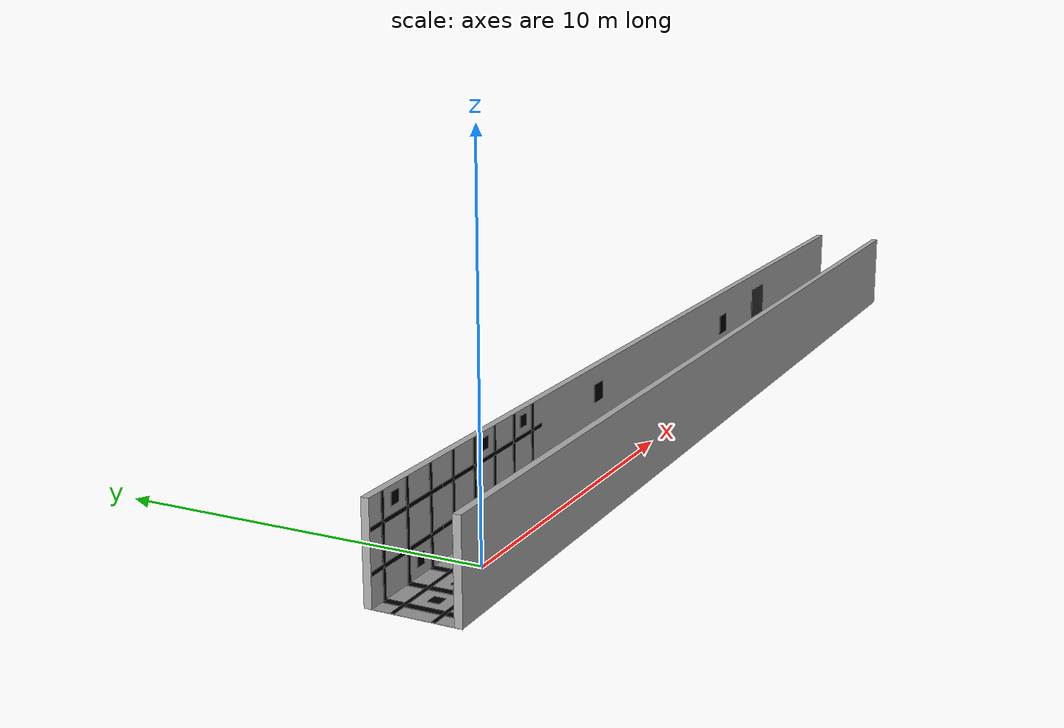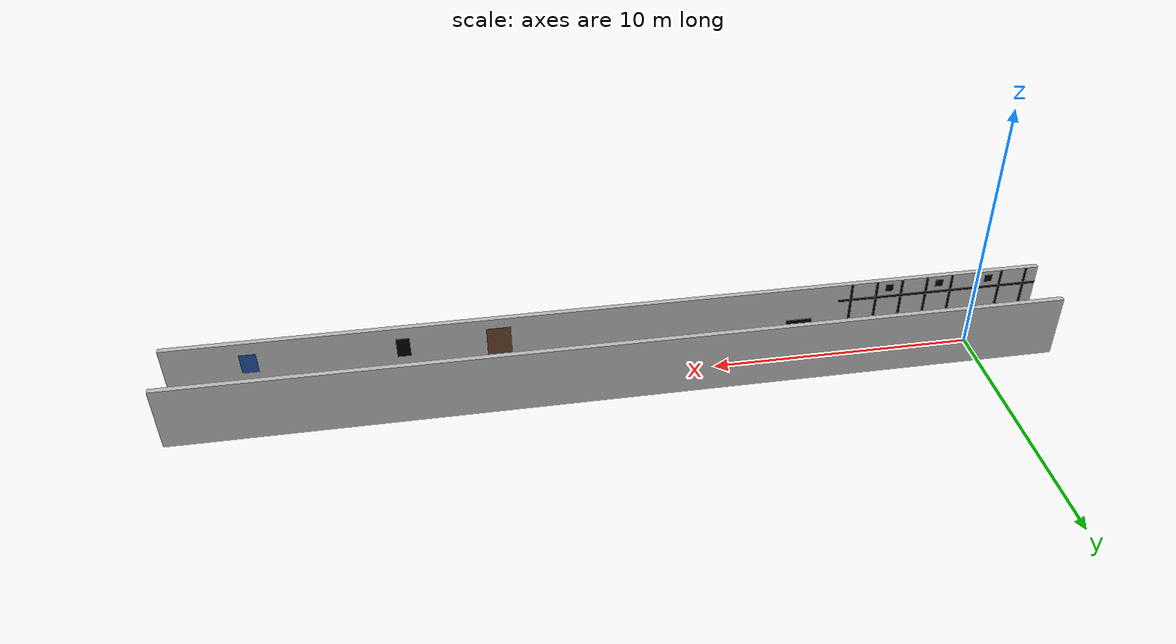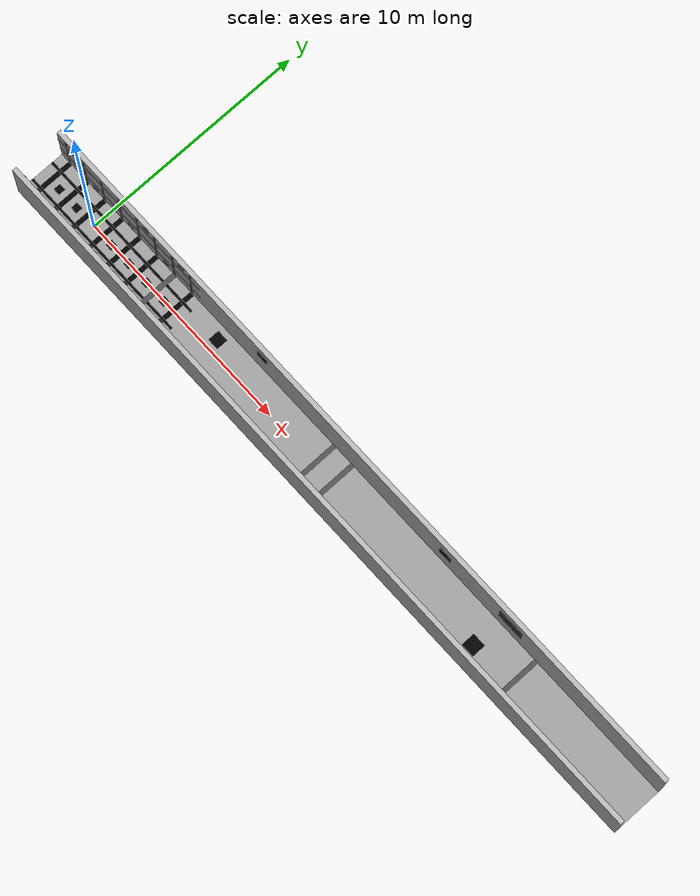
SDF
<?xml version="1.0" encoding="UTF-8"?>
<sdf version="1.9">
  <world name="corridor">

    <physics type="ode">
      <max_step_size>0.004</max_step_size>
      <real_time_factor>1.0</real_time_factor>
      <real_time_update_rate>250</real_time_update_rate>
    </physics>

    <plugin name="gz::sim::systems::Physics" filename="gz-sim-physics-system"/>
    <plugin name="gz::sim::systems::UserCommands" filename="gz-sim-user-commands-system"/>
    <plugin name="gz::sim::systems::SceneBroadcaster" filename="gz-sim-scene-broadcaster-system"/>
    <plugin name="gz::sim::systems::Contact" filename="gz-sim-contact-system"/>
    <plugin name="gz::sim::systems::Imu" filename="gz-sim-imu-system"/>
    <plugin name="gz::sim::systems::AirPressure" filename="gz-sim-air-pressure-system"/>
    <plugin name="gz::sim::systems::ApplyLinkWrench" filename="gz-sim-apply-link-wrench-system"/>
    <plugin name="gz::sim::systems::NavSat" filename="gz-sim-navsat-system"/>
    <plugin name="gz::sim::systems::Sensors" filename="gz-sim-sensors-system">
      <render_engine>ogre2</render_engine>
    </plugin>

    <gravity>0 0 -9.8</gravity>
    <magnetic_field>6e-06 2.3e-05 -4.2e-05</magnetic_field>
    <atmosphere type="adiabatic"/>

    <scene>
      <ambient>0.5 0.5 0.5 1</ambient>
      <background>0.7 0.7 0.7 1</background>
      <shadows>false</shadows>
    </scene>

    <light name="sunUTC" type="directional">
      <pose>0 0 500 0 -0 0</pose>
      <cast_shadows>false</cast_shadows>
      <intensity>1</intensity>
      <direction>0.001 0.625 -0.78</direction>
      <diffuse>0.904 0.904 0.904 1</diffuse>
      <specular>0.271 0.271 0.271 1</specular>
    </light>

    <model name="floor">
      <static>true</static>
      <pose>13.5 0 0 0 0 0</pose>
      <link name="link">

        <collision name="collision">
          <geometry>
            <plane>
              <normal>0 0 1</normal>
              <size>100 100</size>
            </plane>
          </geometry>
          <surface>
            <friction>
              <ode/>
            </friction>
            <bounce/>
            <contact/>
          </surface>
        </collision>

        <visual name="base_visual">
          <geometry><box><size>33 2.2 0.01</size></box></geometry>
          <material>
            <ambient>0.6 0.6 0.6 1</ambient>
            <diffuse>0.6 0.6 0.6 1</diffuse>
          </material>
        </visual>

        <visual name="line_neg">
          <pose>-1 0 0.05 0 0 0</pose>
          <geometry><box><size>0.2 2.2 0.001</size></box></geometry>
          <material><ambient>0.3 0.3 0.3 1</ambient><diffuse>0.3 0.3 0.3 1</diffuse></material>
        </visual>
        <visual name="line1">
          <pose>-10 0 0.05 0 0 0</pose>
          <geometry><box><size>0.2 2.2 0.001</size></box></geometry>
          <material><ambient>0.3 0.3 0.3 1</ambient><diffuse>0.3 0.3 0.3 1</diffuse></material>
        </visual>

        <visual name="line3">
          <pose>0 0 0.05 0 0 0</pose>
          <geometry><box><size>0.2 2.2 0.001</size></box></geometry>
          <material><ambient>0.3 0.3 0.3 1</ambient><diffuse>0.3 0.3 0.3 1</diffuse></material>
        </visual>

        <visual name="line5">
          <pose>10 0 0.05 0 0 0</pose>
          <geometry><box><size>0.2 2.2 0.001</size></box></geometry>
          <material><ambient>0.3 0.3 0.3 1</ambient><diffuse>0.3 0.3 0.3 1</diffuse></material>
        </visual>

        <!-- Added ground features -->
        <visual name="floor_feature1">
          <pose>-7 0.5 0.01 0 0 0</pose>
          <geometry><box><size>0.5 0.5 0.001</size></box></geometry>
          <material><ambient>0 0 0 1</ambient><diffuse>0 0 0 1</diffuse></material>
        </visual>

        <visual name="floor_feature4">
          <pose>8 -0.3 0.01 0 0 0</pose>
          <geometry><box><size>0.6 0.6 0.001</size></box></geometry>
          <material><ambient>0 0 0 1</ambient><diffuse>0 0 0 1</diffuse></material>
        </visual>

      </link>
    </model>

    <model name="left_wall">
      <static>true</static>
      <pose>13.5 1.1 1.25 0 0 0</pose>
      <link name="link">
        <collision name="collision">
          <geometry>
            <box>
              <size>33 0.2 2.5</size>
            </box>
          </geometry>
          <surface>
            <friction>
              <ode>
                <!-- Realistic wall friction; end-effector has mu=0.02 so effective contact = min(0.02, 0.5) = 0.02 -->
                <mu>0.5</mu>
                <mu2>0.5</mu2>
              </ode>
            </friction>
          </surface>
        </collision>
        <visual name="visual">
          <geometry>
            <box>
              <size>33 0.2 2.5</size>
            </box>
          </geometry>
          <material>
            <ambient>0.7 0.7 0.7 1</ambient>
            <diffuse>0.7 0.7 0.7 1</diffuse>
          </material>
        </visual>
        <!-- Added Features -->
        <visual name="feature_l2">
          <pose>-5 -0.1 0.5 0 0 0</pose>
          <geometry><box><size>0.5 0.05 0.5</size></box></geometry>
          <material><ambient>0 0 0 1</ambient><diffuse>0 0 0 1</diffuse></material>
        </visual>

        <visual name="feature_l4">
          <pose>5 -0.1 0.2 0 0 0</pose>
          <geometry><box><size>0.6 0.05 0.6</size></box></geometry>
          <material><ambient>0 0 0 1</ambient><diffuse>0 0 0 1</diffuse></material>
        </visual>
      </link>
    </model>

    <model name="right_wall">
      <static>true</static>
      <pose>13.5 -1.1 1.25 0 0 0</pose>
      <link name="link">
        <collision name="collision">
          <geometry>
            <box>
              <size>33 0.2 2.5</size>
            </box>
          </geometry>
          <surface>
            <friction>
              <ode>
                <!-- Realistic wall friction; end-effector has mu=0.02 so effective contact = min(0.02, 0.5) = 0.02 -->
                <mu>0.5</mu>
                <mu2>0.5</mu2>
              </ode>
            </friction>
          </surface>
        </collision>
        <visual name="visual">
          <geometry>
            <box>
              <size>33 0.2 2.5</size>
            </box>
          </geometry>
          <material>
            <ambient>0.7 0.7 0.7 1</ambient>
            <diffuse>0.7 0.7 0.7 1</diffuse>
          </material>
        </visual>
        <!-- Added Features -->
        <visual name="feature_r1">
          <pose>-7 0.1 -0.4 0 0 0</pose>
          <geometry><box><size>1.0 0.05 0.5</size></box></geometry>
          <material><ambient>0 0 0 1</ambient><diffuse>0 0 0 1</diffuse></material>
        </visual>

        <visual name="feature_r3">
          <pose>8 0.1 0.4 0 0 0</pose>
          <geometry><box><size>0.5 0.05 0.8</size></box></geometry>
          <material><ambient>0 0 0 1</ambient><diffuse>0 0 0 1</diffuse></material>
        </visual>
      </link>
    </model>

    <model name="init_zone">
      <static>true</static>
      <link name="link">

        <visual name="wall_L_h1">
          <pose>2.5 0.99 0.8 0 0 0</pose>
          <geometry>
            <box>
              <size>5.0 0.02 0.1</size>
            </box>
          </geometry>
          <material>
            <ambient>0 0 0 1</ambient>
            <diffuse>0 0 0 1</diffuse>
          </material>
        </visual>

        <visual name="wall_L_h2">
          <pose>2.5 0.99 1.8 0 0 0</pose>
          <geometry>
            <box>
              <size>5.0 0.02 0.1</size>
            </box>
          </geometry>
          <material>
            <ambient>0 0 0 1</ambient>
            <diffuse>0 0 0 1</diffuse>
          </material>
        </visual>

        <visual name="wall_L_v1">
          <pose>0.5 0.99 1.25 0 0 0</pose>
          <geometry>
            <box>
              <size>0.1 0.02 2.5</size>
            </box>
          </geometry>
          <material>
            <ambient>0 0 0 1</ambient>
            <diffuse>0 0 0 1</diffuse>
          </material>
        </visual>

        <visual name="wall_L_v2">
          <pose>1.5 0.99 1.25 0 0 0</pose>
          <geometry>
            <box>
              <size>0.1 0.02 2.5</size>
            </box>
          </geometry>
          <material>
            <ambient>0 0 0 1</ambient>
            <diffuse>0 0 0 1</diffuse>
          </material>
        </visual>

        <visual name="wall_L_v3">
          <pose>2.5 0.99 1.25 0 0 0</pose>
          <geometry>
            <box>
              <size>0.1 0.02 2.5</size>
            </box>
          </geometry>
          <material>
            <ambient>0 0 0 1</ambient>
            <diffuse>0 0 0 1</diffuse>
          </material>
        </visual>

        <visual name="wall_L_v4">
          <pose>3.5 0.99 1.25 0 0 0</pose>
          <geometry>
            <box>
              <size>0.1 0.02 2.5</size>
            </box>
          </geometry>
          <material>
            <ambient>0 0 0 1</ambient>
            <diffuse>0 0 0 1</diffuse>
          </material>
        </visual>

        <visual name="wall_L_v5">
          <pose>4.5 0.99 1.25 0 0 0</pose>
          <geometry>
            <box>
              <size>0.1 0.02 2.5</size>
            </box>
          </geometry>
          <material>
            <ambient>0 0 0 1</ambient>
            <diffuse>0 0 0 1</diffuse>
          </material>
        </visual>

        <visual name="wall_L_sq1">
          <pose>1.0 0.99 0.4 0 0 0</pose>
          <geometry>
            <box>
              <size>0.3 0.02 0.3</size>
            </box>
          </geometry>
          <material>
            <ambient>0 0 0 1</ambient>
            <diffuse>0 0 0 1</diffuse>
          </material>
        </visual>

        <visual name="wall_L_sq2">
          <pose>2.0 0.99 2.2 0 0 0</pose>
          <geometry>
            <box>
              <size>0.3 0.02 0.3</size>
            </box>
          </geometry>
          <material>
            <ambient>0 0 0 1</ambient>
            <diffuse>0 0 0 1</diffuse>
          </material>
        </visual>

        <visual name="wall_L_sq3">
          <pose>3.0 0.99 0.4 0 0 0</pose>
          <geometry>
            <box>
              <size>0.3 0.02 0.3</size>
            </box>
          </geometry>
          <material>
            <ambient>0 0 0 1</ambient>
            <diffuse>0 0 0 1</diffuse>
          </material>
        </visual>

        <visual name="wall_L_sq4">
          <pose>4.0 0.99 2.2 0 0 0</pose>
          <geometry>
            <box>
              <size>0.3 0.02 0.3</size>
            </box>
          </geometry>
          <material>
            <ambient>0 0 0 1</ambient>
            <diffuse>0 0 0 1</diffuse>
          </material>
        </visual>

        <visual name="wall_R_h1">
          <pose>2.5 -0.99 0.8 0 0 0</pose>
          <geometry>
            <box>
              <size>5.0 0.02 0.1</size>
            </box>
          </geometry>
          <material>
            <ambient>0 0 0 1</ambient>
            <diffuse>0 0 0 1</diffuse>
          </material>
        </visual>

        <visual name="wall_R_h2">
          <pose>2.5 -0.99 1.8 0 0 0</pose>
          <geometry>
            <box>
              <size>5.0 0.02 0.1</size>
            </box>
          </geometry>
          <material>
            <ambient>0 0 0 1</ambient>
            <diffuse>0 0 0 1</diffuse>
          </material>
        </visual>

        <visual name="wall_R_v1">
          <pose>0.5 -0.99 1.25 0 0 0</pose>
          <geometry>
            <box>
              <size>0.1 0.02 2.5</size>
            </box>
          </geometry>
          <material>
            <ambient>0 0 0 1</ambient>
            <diffuse>0 0 0 1</diffuse>
          </material>
        </visual>

        <visual name="wall_R_v2">
          <pose>1.5 -0.99 1.25 0 0 0</pose>
          <geometry>
            <box>
              <size>0.1 0.02 2.5</size>
            </box>
          </geometry>
          <material>
            <ambient>0 0 0 1</ambient>
            <diffuse>0 0 0 1</diffuse>
          </material>
        </visual>

        <visual name="wall_R_v3">
          <pose>2.5 -0.99 1.25 0 0 0</pose>
          <geometry>
            <box>
              <size>0.1 0.02 2.5</size>
            </box>
          </geometry>
          <material>
            <ambient>0 0 0 1</ambient>
            <diffuse>0 0 0 1</diffuse>
          </material>
        </visual>

        <visual name="wall_R_v4">
          <pose>3.5 -0.99 1.25 0 0 0</pose>
          <geometry>
            <box>
              <size>0.1 0.02 2.5</size>
            </box>
          </geometry>
          <material>
            <ambient>0 0 0 1</ambient>
            <diffuse>0 0 0 1</diffuse>
          </material>
        </visual>

        <visual name="wall_R_v5">
          <pose>4.5 -0.99 1.25 0 0 0</pose>
          <geometry>
            <box>
              <size>0.1 0.02 2.5</size>
            </box>
          </geometry>
          <material>
            <ambient>0 0 0 1</ambient>
            <diffuse>0 0 0 1</diffuse>
          </material>
        </visual>

        <visual name="wall_R_sq1">
          <pose>1.0 -0.99 2.2 0 0 0</pose>
          <geometry>
            <box>
              <size>0.3 0.02 0.3</size>
            </box>
          </geometry>
          <material>
            <ambient>0 0 0 1</ambient>
            <diffuse>0 0 0 1</diffuse>
          </material>
        </visual>

        <visual name="wall_R_sq2">
          <pose>2.0 -0.99 0.4 0 0 0</pose>
          <geometry>
            <box>
              <size>0.3 0.02 0.3</size>
            </box>
          </geometry>
          <material>
            <ambient>0 0 0 1</ambient>
            <diffuse>0 0 0 1</diffuse>
          </material>
        </visual>

        <visual name="wall_R_sq3">
          <pose>3.0 -0.99 2.2 0 0 0</pose>
          <geometry>
            <box>
              <size>0.3 0.02 0.3</size>
            </box>
          </geometry>
          <material>
            <ambient>0 0 0 1</ambient>
            <diffuse>0 0 0 1</diffuse>
          </material>
        </visual>

        <visual name="wall_R_sq4">
          <pose>4.0 -0.99 0.4 0 0 0</pose>
          <geometry>
            <box>
              <size>0.3 0.02 0.3</size>
            </box>
          </geometry>
          <material>
            <ambient>0 0 0 1</ambient>
            <diffuse>0 0 0 1</diffuse>
          </material>
        </visual>

        <!-- Strisce nere per terra nella init_zone per VIO -->
        <visual name="floor_stripe1">
          <pose>0.5 0 0.01 0 0 0</pose>
          <geometry><box><size>0.2 1.98 0.01</size></box></geometry>
          <material><ambient>0 0 0 1</ambient><diffuse>0 0 0 1</diffuse></material>
        </visual>
        <visual name="floor_stripe2">
          <pose>1.5 0 0.01 0 0 0</pose>
          <geometry><box><size>0.2 1.98 0.01</size></box></geometry>
          <material><ambient>0 0 0 1</ambient><diffuse>0 0 0 1</diffuse></material>
        </visual>
        <visual name="floor_stripe3">
          <pose>2.5 0 0.01 0 0 0</pose>
          <geometry><box><size>0.2 1.98 0.01</size></box></geometry>
          <material><ambient>0 0 0 1</ambient><diffuse>0 0 0 1</diffuse></material>
        </visual>
        <visual name="floor_stripe4">
          <pose>3.5 0 0.01 0 0 0</pose>
          <geometry><box><size>0.2 1.98 0.01</size></box></geometry>
          <material><ambient>0 0 0 1</ambient><diffuse>0 0 0 1</diffuse></material>
        </visual>
        <visual name="floor_stripe5">
          <pose>4.5 0 0.01 0 0 0</pose>
          <geometry><box><size>0.2 1.98 0.01</size></box></geometry>
          <material><ambient>0 0 0 1</ambient><diffuse>0 0 0 1</diffuse></material>
        </visual>

        <visual name="floor_long_stripe1">
          <pose>2.5 0.5 0.011 0 0 0</pose>
          <geometry><box><size>5.0 0.1 0.01</size></box></geometry>
          <material><ambient>0 0 0 1</ambient><diffuse>0 0 0 1</diffuse></material>
        </visual>
        <visual name="floor_long_stripe2">
          <pose>2.5 -0.5 0.011 0 0 0</pose>
          <geometry><box><size>5.0 0.1 0.01</size></box></geometry>
          <material><ambient>0 0 0 1</ambient><diffuse>0 0 0 1</diffuse></material>
        </visual>

        <!-- Quadrati per terra (come sulle mura) -->
        <visual name="floor_sq1">
          <pose>1.0 0.0 0.012 0 0 0</pose>
          <geometry><box><size>0.3 0.3 0.01</size></box></geometry>
          <material><ambient>0 0 0 1</ambient><diffuse>0 0 0 1</diffuse></material>
        </visual>
        <visual name="floor_sq2">
          <pose>2.0 0.0 0.012 0 0 0</pose>
          <geometry><box><size>0.3 0.3 0.01</size></box></geometry>
          <material><ambient>0 0 0 1</ambient><diffuse>0 0 0 1</diffuse></material>
        </visual>
        <visual name="floor_sq3">
          <pose>3.0 0.0 0.012 0 0 0</pose>
          <geometry><box><size>0.3 0.3 0.01</size></box></geometry>
          <material><ambient>0 0 0 1</ambient><diffuse>0 0 0 1</diffuse></material>
        </visual>
        <visual name="floor_sq4">
          <pose>4.0 0.0 0.012 0 0 0</pose>
          <geometry><box><size>0.3 0.3 0.01</size></box></geometry>
          <material><ambient>0 0 0 1</ambient><diffuse>0 0 0 1</diffuse></material>
        </visual>

        <!-- NEGATIVE X FEATURES FOR REAR CAMERA -->
        <visual name="wall_L_v_n1"><pose>-0.5 0.99 1.25 0 0 0</pose><geometry><box><size>0.1 0.02 2.5</size></box></geometry><material><ambient>0 0 0 1</ambient><diffuse>0 0 0 1</diffuse></material></visual>
        <visual name="wall_L_v_n2"><pose>-1.5 0.99 1.25 0 0 0</pose><geometry><box><size>0.1 0.02 2.5</size></box></geometry><material><ambient>0 0 0 1</ambient><diffuse>0 0 0 1</diffuse></material></visual>
        <visual name="wall_L_v_n3"><pose>-2.5 0.99 1.25 0 0 0</pose><geometry><box><size>0.1 0.02 2.5</size></box></geometry><material><ambient>0 0 0 1</ambient><diffuse>0 0 0 1</diffuse></material></visual>
        <visual name="wall_L_sq_n1"><pose>-1.0 0.99 0.4 0 0 0</pose><geometry><box><size>0.3 0.02 0.3</size></box></geometry><material><ambient>0 0 0 1</ambient><diffuse>0 0 0 1</diffuse></material></visual>
        <visual name="wall_L_sq_n2"><pose>-2.0 0.99 2.2 0 0 0</pose><geometry><box><size>0.3 0.02 0.3</size></box></geometry><material><ambient>0 0 0 1</ambient><diffuse>0 0 0 1</diffuse></material></visual>
        <visual name="wall_L_h_n1"><pose>-1.5 0.99 0.8 0 0 0</pose><geometry><box><size>3.0 0.02 0.1</size></box></geometry><material><ambient>0 0 0 1</ambient><diffuse>0 0 0 1</diffuse></material></visual>
        <visual name="wall_L_h_n2"><pose>-1.5 0.99 1.8 0 0 0</pose><geometry><box><size>3.0 0.02 0.1</size></box></geometry><material><ambient>0 0 0 1</ambient><diffuse>0 0 0 1</diffuse></material></visual>

        <visual name="wall_R_v_n1"><pose>-0.5 -0.99 1.25 0 0 0</pose><geometry><box><size>0.1 0.02 2.5</size></box></geometry><material><ambient>0 0 0 1</ambient><diffuse>0 0 0 1</diffuse></material></visual>
        <visual name="wall_R_v_n2"><pose>-1.5 -0.99 1.25 0 0 0</pose><geometry><box><size>0.1 0.02 2.5</size></box></geometry><material><ambient>0 0 0 1</ambient><diffuse>0 0 0 1</diffuse></material></visual>
        <visual name="wall_R_v_n3"><pose>-2.5 -0.99 1.25 0 0 0</pose><geometry><box><size>0.1 0.02 2.5</size></box></geometry><material><ambient>0 0 0 1</ambient><diffuse>0 0 0 1</diffuse></material></visual>
        <visual name="wall_R_sq_n1"><pose>-1.0 -0.99 2.2 0 0 0</pose><geometry><box><size>0.3 0.02 0.3</size></box></geometry><material><ambient>0 0 0 1</ambient><diffuse>0 0 0 1</diffuse></material></visual>
        <visual name="wall_R_sq_n2"><pose>-2.0 -0.99 0.4 0 0 0</pose><geometry><box><size>0.3 0.02 0.3</size></box></geometry><material><ambient>0 0 0 1</ambient><diffuse>0 0 0 1</diffuse></material></visual>
        <visual name="wall_R_h_n1"><pose>-1.5 -0.99 0.8 0 0 0</pose><geometry><box><size>3.0 0.02 0.1</size></box></geometry><material><ambient>0 0 0 1</ambient><diffuse>0 0 0 1</diffuse></material></visual>
        <visual name="wall_R_h_n2"><pose>-1.5 -0.99 1.8 0 0 0</pose><geometry><box><size>3.0 0.02 0.1</size></box></geometry><material><ambient>0 0 0 1</ambient><diffuse>0 0 0 1</diffuse></material></visual>

        <visual name="floor_stripe_b1"><pose>-0.5 0 0.01 0 0 0</pose><geometry><box><size>0.2 1.98 0.01</size></box></geometry><material><ambient>0 0 0 1</ambient><diffuse>0 0 0 1</diffuse></material></visual>
        <visual name="floor_stripe_b2"><pose>-1.5 0 0.01 0 0 0</pose><geometry><box><size>0.2 1.98 0.01</size></box></geometry><material><ambient>0 0 0 1</ambient><diffuse>0 0 0 1</diffuse></material></visual>
        <visual name="floor_stripe_b3"><pose>-2.5 0 0.01 0 0 0</pose><geometry><box><size>0.2 1.98 0.01</size></box></geometry><material><ambient>0 0 0 1</ambient><diffuse>0 0 0 1</diffuse></material></visual>

        <visual name="floor_long_stripe_n1"><pose>-1.5 0.5 0.011 0 0 0</pose><geometry><box><size>3.0 0.1 0.01</size></box></geometry><material><ambient>0 0 0 1</ambient><diffuse>0 0 0 1</diffuse></material></visual>
        <visual name="floor_long_stripe_n2"><pose>-1.5 -0.5 0.011 0 0 0</pose><geometry><box><size>3.0 0.1 0.01</size></box></geometry><material><ambient>0 0 0 1</ambient><diffuse>0 0 0 1</diffuse></material></visual>

        <visual name="floor_sq_n1"><pose>-1.0 0.0 0.012 0 0 0</pose><geometry><box><size>0.3 0.3 0.01</size></box></geometry><material><ambient>0 0 0 1</ambient><diffuse>0 0 0 1</diffuse></material></visual>
        <visual name="floor_sq_n2"><pose>-2.0 0.0 0.012 0 0 0</pose><geometry><box><size>0.3 0.3 0.01</size></box></geometry><material><ambient>0 0 0 1</ambient><diffuse>0 0 0 1</diffuse></material></visual>
      </link>
    </model>

    <spherical_coordinates>
      <surface_model>EARTH_WGS84</surface_model>
      <world_frame_orientation>ENU</world_frame_orientation>
      <latitude_deg>47.397971057728974</latitude_deg>
      <longitude_deg> 8.546163739800146</longitude_deg>
      <elevation>0</elevation>
    </spherical_coordinates>

    <model name="features">
      <static>true</static>
      <link name="link">

        <visual name="door_panel">
          <pose>18.0 -0.99 1.05 0 0 0</pose>
          <geometry><box><size>0.9 0.01 2.1</size></box></geometry>
          <material><ambient>0.4 0.25 0.15 1</ambient><diffuse>0.4 0.25 0.15 1</diffuse></material>
        </visual>
        <visual name="door_handle">
          <pose>17.65 -0.98 1.05 1.5708 0 0</pose>
          <geometry><cylinder><radius>0.02</radius><length>0.06</length></cylinder></geometry>
          <material><ambient>0.8 0.8 0.8 1</ambient><diffuse>0.8 0.8 0.8 1</diffuse></material>
        </visual>

        <visual name="window_frame">
          <pose>22.0 0.98 1.5 0 0 0</pose>
          <geometry><box><size>1.2 0.01 1.0</size></box></geometry>
          <material><ambient>0.2 0.2 0.2 1</ambient><diffuse>0.2 0.2 0.2 1</diffuse></material>
        </visual>
        <visual name="window_glass">
          <pose>22.0 0.99 1.5 0 0 0</pose>
          <geometry><box><size>1.1 0.01 0.9</size></box></geometry>
          <material><ambient>0.5 0.7 0.9 1</ambient><diffuse>0.5 0.7 0.9 1</diffuse></material>
        </visual>

        <visual name="poster_board">
          <pose>27.0 -0.99 1.6 0 0 0</pose>
          <geometry><box><size>0.6 0.01 0.8</size></box></geometry>
          <material><ambient>0.1 0.3 0.6 1</ambient><diffuse>0.1 0.3 0.6 1</diffuse></material>
        </visual>

      </link>
    </model>

  </world>
</sdf>
